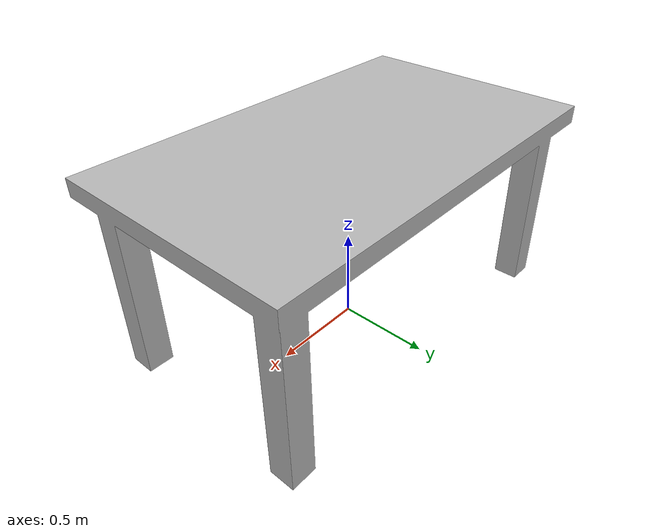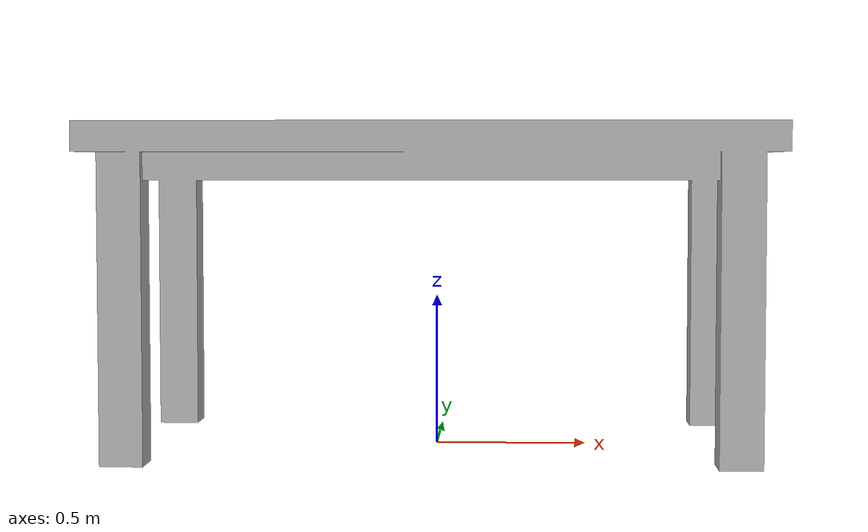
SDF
<?xml version="1.0" ?>
<sdf version="1.5">
  <model name="office_table">
    <static>true</static>
    <link name="link">
      <collision name="collision">
        <pose>-0.000328 -0.000776 0.538111 0 0 0</pose>
        <geometry>
          <box>
            <size>2.199990 1.323880 1.094550</size>
          </box>
        </geometry>
      </collision>
      <visual name="visual">
        <geometry>
          <mesh>
            <uri>model://office_table/meshes/office_table.dae</uri>
            <scale>1.4 1.4 1.4</scale>
          </mesh>
        </geometry>
      </visual>
    </link>
  </model>
</sdf>
